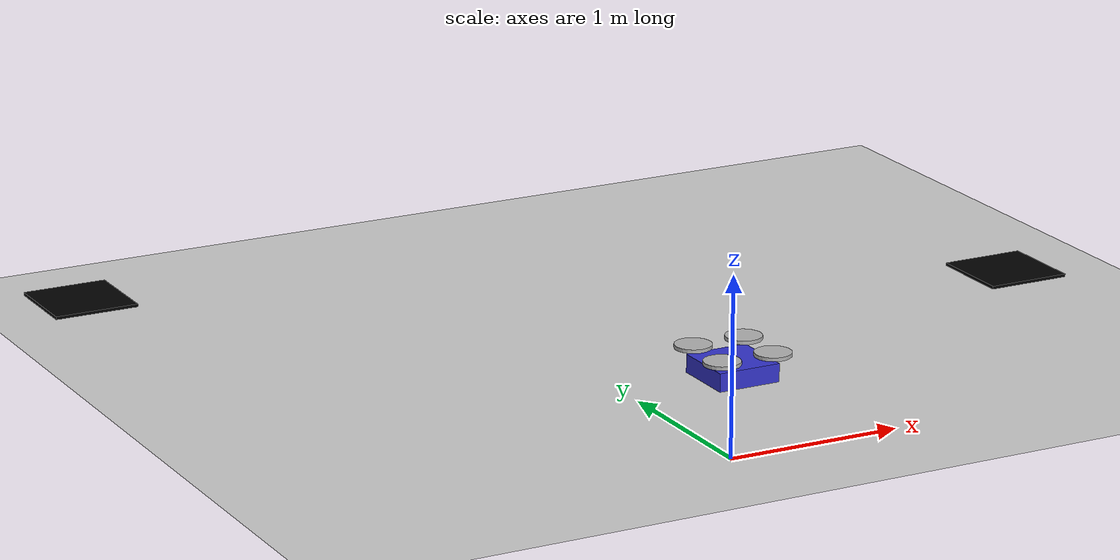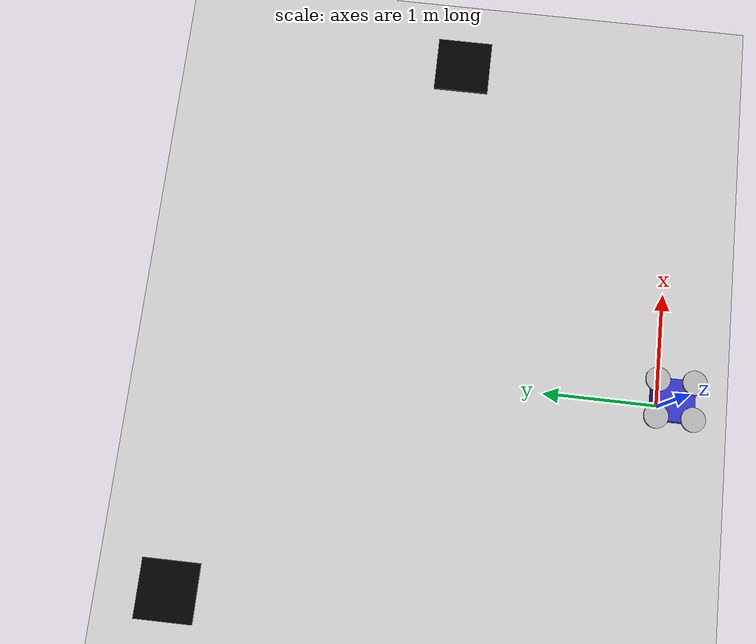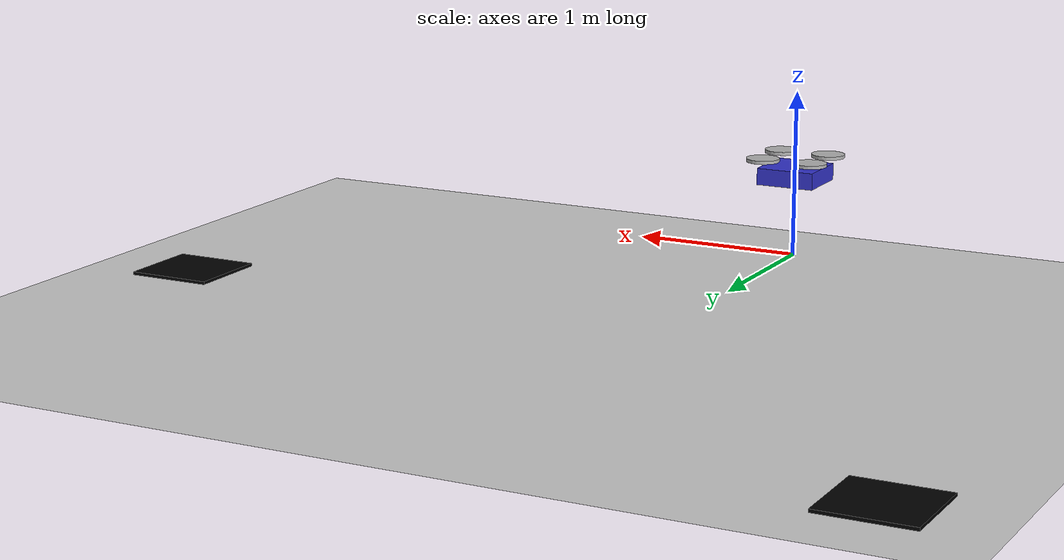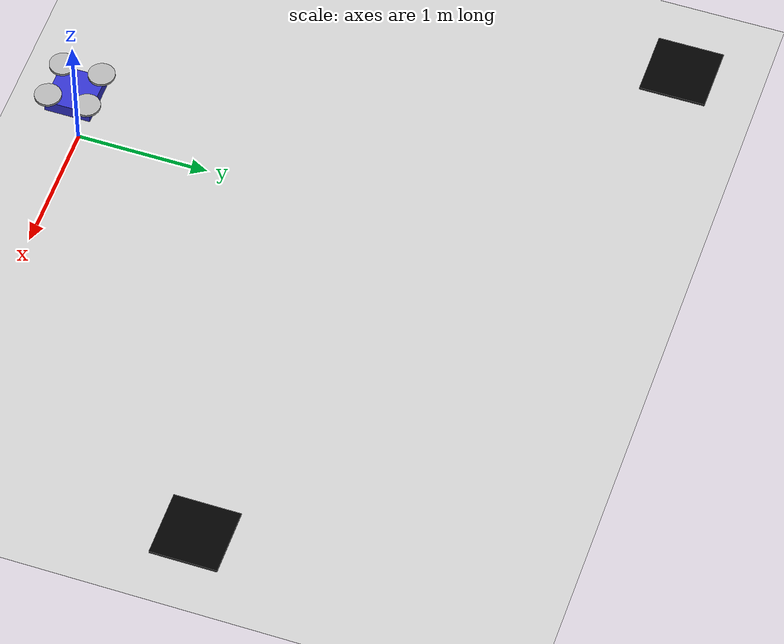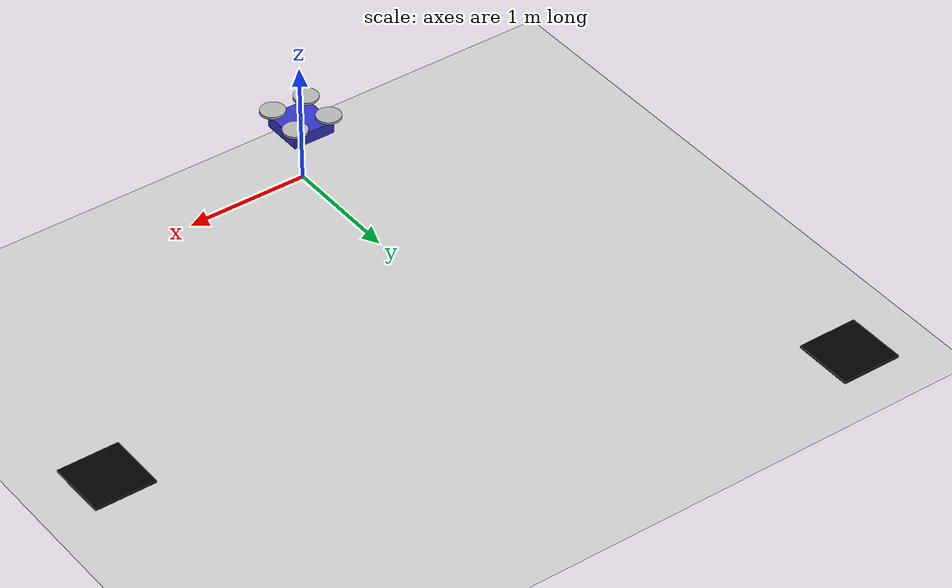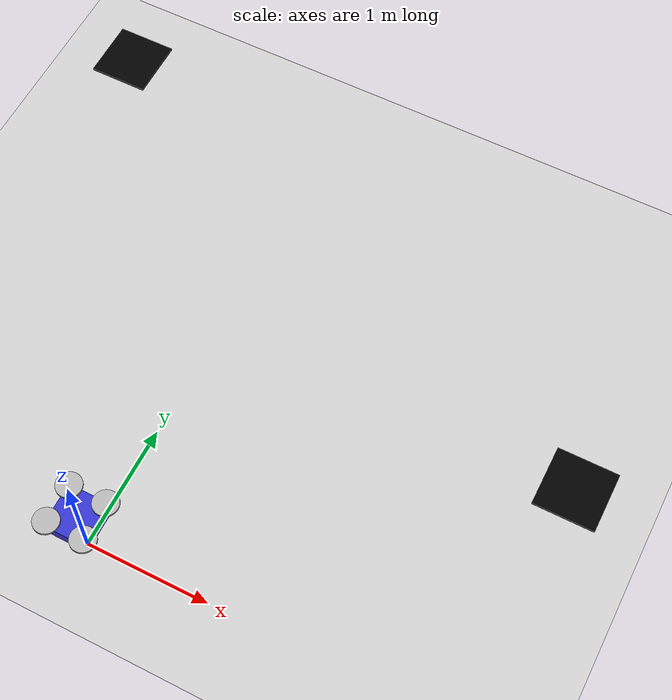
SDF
<?xml version="1.0"?>
<sdf version="1.8">
  <world name="simple_world">
    <physics name="1ms" type="ignored">
      <max_step_size>0.001</max_step_size>
      <real_time_factor>1.0</real_time_factor>
    </physics>

    <plugin filename="gz-sim-physics-system" name="gz::sim::systems::Physics"></plugin>
    <plugin filename="gz-sim-scene-broadcaster-system" name="gz::sim::systems::SceneBroadcaster"></plugin>
    <plugin filename="gz-sim-sensors-system" name="gz::sim::systems::Sensors">
      <render_engine>ogre2</render_engine>
    </plugin>
    <plugin filename="gz-sim-user-commands-system" name="gz::sim::systems::UserCommands"></plugin>

    <light type="directional" name="sun">
      <cast_shadows>true</cast_shadows>
      <pose>0 0 10 0 0 0</pose>
      <diffuse>0.8 0.8 0.8 1</diffuse>
      <specular>0.2 0.2 0.2 1</specular>
      <direction>-0.5 0.1 -0.9</direction>
    </light>

    <model name="ground_plane">
      <static>true</static>
      <link name="link">
        <collision name="collision">
          <geometry>
            <plane>
              <normal>0 0 1</normal>
              <size>100 100</size>
            </plane>
          </geometry>
        </collision>
        <visual name="visual">
          <geometry>
            <plane>
              <normal>0 0 1</normal>
              <size>100 100</size>
            </plane>
          </geometry>
          <material>
            <ambient>0.8 0.8 0.8 1</ambient>
            <diffuse>0.8 0.8 0.8 1</diffuse>
          </material>
        </visual>
      </link>
    </model>

    <!-- Let's use a simpler drone model without the multicopter controller -->
    <model name="simple_drone">
      <pose>0 0 0.5 0 0 0</pose>
      <link name="base_link">
        <inertial>
          <mass>1.5</mass>
          <inertia>
            <ixx>0.0347</ixx>
            <ixy>0</ixy>
            <ixz>0</ixz>
            <iyy>0.0347</iyy>
            <iyz>0</iyz>
            <izz>0.0693</izz>
          </inertia>
        </inertial>
        <collision name="collision">
          <geometry>
            <box>
              <size>0.35 0.35 0.1</size>
            </box>
          </geometry>
        </collision>
        <visual name="visual">
          <geometry>
            <box>
              <size>0.35 0.35 0.1</size>
            </box>
          </geometry>
          <material>
            <ambient>0.2 0.2 0.8 1</ambient>
            <diffuse>0.2 0.2 0.8 1</diffuse>
          </material>
        </visual>

        <!-- Camera -->
        <sensor name="camera" type="camera">
          <pose>0 0 -0.05 0 1.5707 0</pose>
          <camera>
            <horizontal_fov>1.047</horizontal_fov>
            <image>
              <width>640</width>
              <height>480</height>
            </image>
            <clip>
              <near>0.1</near>
              <far>100</far>
            </clip>
          </camera>
          <always_on>1</always_on>
          <update_rate>30</update_rate>
          <visualize>true</visualize>
          <topic>camera</topic>
        </sensor>
      </link>

      <!-- Rotor visualization -->
      <link name="rotor1">
        <pose>0.15 0.15 0.1 0 0 0</pose>
        <visual name="visual">
          <geometry>
            <cylinder>
              <radius>0.1</radius>
              <length>0.02</length>
            </cylinder>
          </geometry>
          <material>
            <ambient>0.7 0.7 0.7 1</ambient>
            <diffuse>0.7 0.7 0.7 1</diffuse>
          </material>
        </visual>
      </link>

      <link name="rotor2">
        <pose>-0.15 0.15 0.1 0 0 0</pose>
        <visual name="visual">
          <geometry>
            <cylinder>
              <radius>0.1</radius>
              <length>0.02</length>
            </cylinder>
          </geometry>
          <material>
            <ambient>0.7 0.7 0.7 1</ambient>
            <diffuse>0.7 0.7 0.7 1</diffuse>
          </material>
        </visual>
      </link>

      <link name="rotor3">
        <pose>-0.15 -0.15 0.1 0 0 0</pose>
        <visual name="visual">
          <geometry>
            <cylinder>
              <radius>0.1</radius>
              <length>0.02</length>
            </cylinder>
          </geometry>
          <material>
            <ambient>0.7 0.7 0.7 1</ambient>
            <diffuse>0.7 0.7 0.7 1</diffuse>
          </material>
        </visual>
      </link>

      <link name="rotor4">
        <pose>0.15 -0.15 0.1 0 0 0</pose>
        <visual name="visual">
          <geometry>
            <cylinder>
              <radius>0.1</radius>
              <length>0.02</length>
            </cylinder>
          </geometry>
          <material>
            <ambient>0.7 0.7 0.7 1</ambient>
            <diffuse>0.7 0.7 0.7 1</diffuse>
          </material>
        </visual>
      </link>

      <!-- Joints -->
      <joint name="rotor1_joint" type="fixed">
        <parent>base_link</parent>
        <child>rotor1</child>
      </joint>

      <joint name="rotor2_joint" type="fixed">
        <parent>base_link</parent>
        <child>rotor2</child>
      </joint>

      <joint name="rotor3_joint" type="fixed">
        <parent>base_link</parent>
        <child>rotor3</child>
      </joint>

      <joint name="rotor4_joint" type="fixed">
        <parent>base_link</parent>
        <child>rotor4</child>
      </joint>

      <!-- Use the simpler thruster plugin instead of the multicopter controller -->
      <plugin filename="gz-sim-thruster-system" name="gz::sim::systems::Thruster">
        <namespace>drone</namespace>
        <joint_name>rotor1_joint</joint_name>
        <thrust_coefficient>0.02</thrust_coefficient>
        <fluid_density>1.2041</fluid_density>
        <propeller_diameter>0.2</propeller_diameter>
      </plugin>

      <plugin filename="gz-sim-thruster-system" name="gz::sim::systems::Thruster">
        <namespace>drone</namespace>
        <joint_name>rotor2_joint</joint_name>
        <thrust_coefficient>0.02</thrust_coefficient>
        <fluid_density>1.2041</fluid_density>
        <propeller_diameter>0.2</propeller_diameter>
      </plugin>

      <plugin filename="gz-sim-thruster-system" name="gz::sim::systems::Thruster">
        <namespace>drone</namespace>
        <joint_name>rotor3_joint</joint_name>
        <thrust_coefficient>0.02</thrust_coefficient>
        <fluid_density>1.2041</fluid_density>
        <propeller_diameter>0.2</propeller_diameter>
      </plugin>

      <plugin filename="gz-sim-thruster-system" name="gz::sim::systems::Thruster">
        <namespace>drone</namespace>
        <joint_name>rotor4_joint</joint_name>
        <thrust_coefficient>0.02</thrust_coefficient>
        <fluid_density>1.2041</fluid_density>
        <propeller_diameter>0.2</propeller_diameter>
      </plugin>
    </model>

    <!-- QR Code Targets -->
    <model name="target1">
      <pose>3 2 0 0 0 0</pose>
      <static>true</static>
      <link name="link">
        <visual name="visual">
          <geometry>
            <box>
              <size>0.5 0.5 0.02</size>
            </box>
          </geometry>
          <material>
            <ambient>0 0 0 1</ambient>
            <diffuse>0 0 0 1</diffuse>
          </material>
        </visual>
        <collision name="collision">
          <geometry>
            <box>
              <size>0.5 0.5 0.02</size>
            </box>
          </geometry>
        </collision>
      </link>
    </model>

    <model name="target2">
      <pose>-2 4 0 0 0 0</pose>
      <static>true</static>
      <link name="link">
        <visual name="visual">
          <geometry>
            <box>
              <size>0.5 0.5 0.02</size>
            </box>
          </geometry>
          <material>
            <ambient>0 0 0 1</ambient>
            <diffuse>0 0 0 1</diffuse>
          </material>
        </visual>
        <collision name="collision">
          <geometry>
            <box>
              <size>0.5 0.5 0.02</size>
            </box>
          </geometry>
        </collision>
      </link>
    </model>
  </world>
</sdf>
